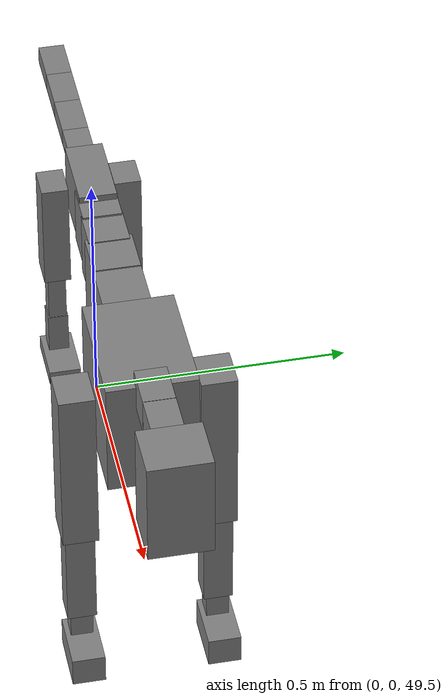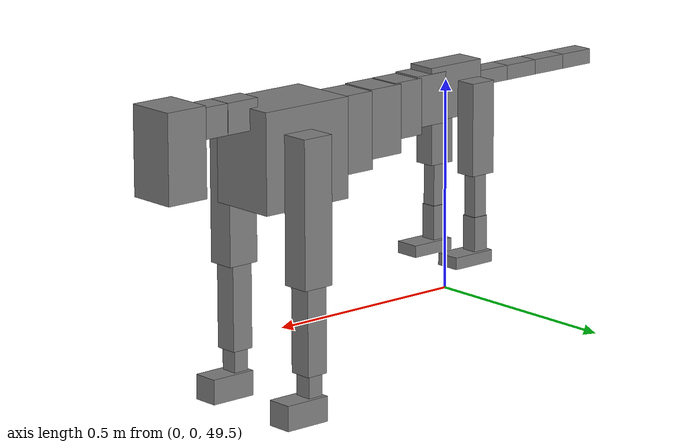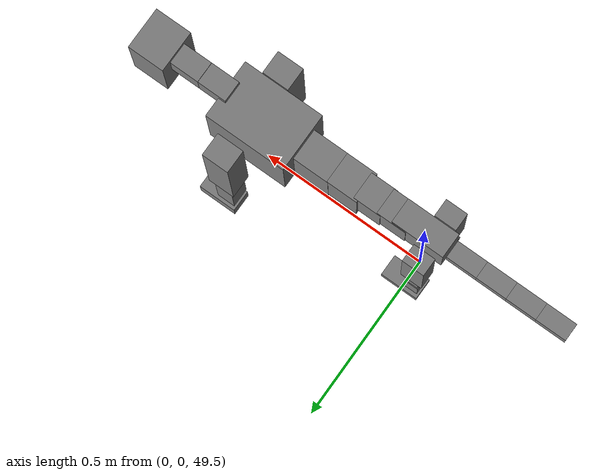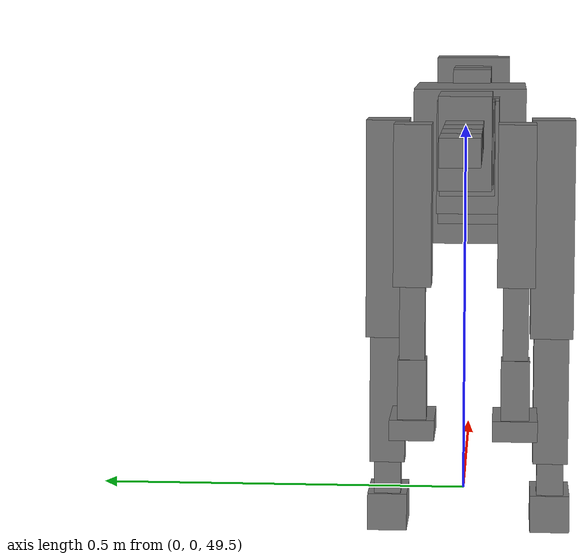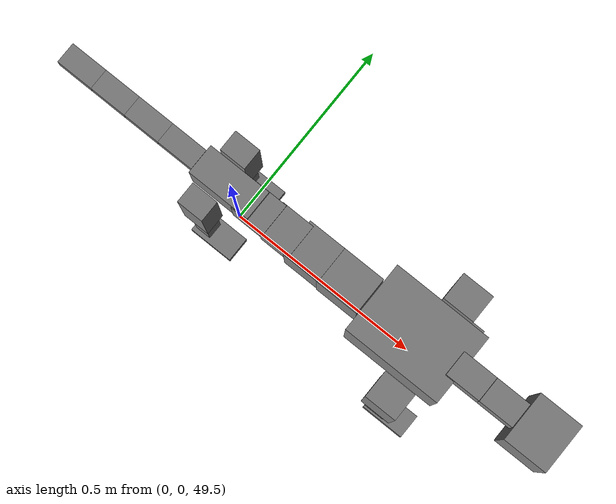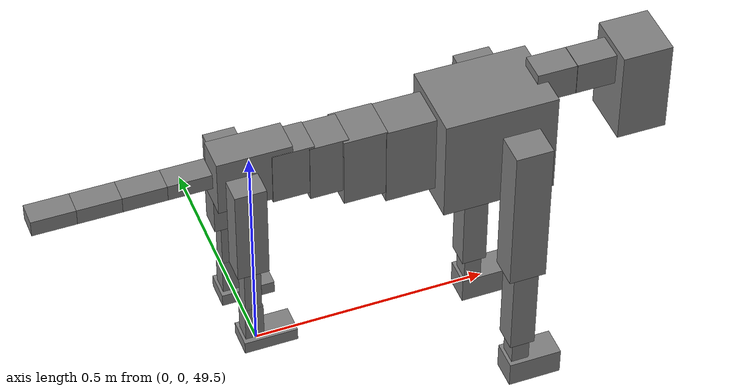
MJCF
<mujoco model="dog">

    <default>
        <joint armature="0.02" stiffness="1" damping="0.2" limited="true"/>
        <geom condim="3" friction="1 0.05 0.05" margin="0.01"/>
        <motor ctrllimited="true" ctrlrange="-1.0 1.0" forcelimited="true" gear="50"/>
    </default>

    <compiler inertiafromgeom="true" angle="radian"/>

    <option timestep="0.016" iterations="50" tolerance="1e-10" solver="Newton" jacobian="dense" cone="pyramidal"/>

    <size nconmax="20000" njmax="60000" nstack="5000000"/>
    <visual>
        <map force="0.1" zfar="30"/>
        <rgba haze="0.15 0.25 0.35 1"/>
        <quality shadowsize="2048"/>
        <global offwidth="800" offheight="800"/>
    </visual>

    <asset>
        <texture type="skybox" builtin="gradient" rgb1="0.3 0.5 0.7" rgb2="0 0 0" width="512" height="512"/>
        <texture name="texplane" type="2d" builtin="checker" rgb1=".2 .3 .4" rgb2=".1 0.15 0.2" width="512" height="512"
                 mark="cross" markrgb=".8 .8 .8"/>
        <texture name="texgeom" type="cube" builtin="flat" mark="cross" width="127" height="1278" rgb1="0.8 0.6 0.4"
                 rgb2="0.8 0.6 0.4" markrgb="1 1 1" random="0.01"/>

        <material name="matplane" reflectance="0.3" texture="texplane" texrepeat="1 1" texuniform="true"/>
        <material name="matgeom" texture="texgeom" texuniform="true" rgba="0.8 0.6 .4 1"/>
    </asset>

    <worldbody>
        <geom name="floor" pos="0 0 0" size="0 0 .25" type="plane" material="matplane" condim="3"/>

        <light directional="false" diffuse=".2 .2 .2" specular="0 0 0" pos="0 0 5" dir="0 0 -1" castshadow="false"/>
        <light mode="targetbodycom" target="torso" directional="false" diffuse=".8 .8 .8" specular="0.3 0.3 0.3"
               pos="0 0 4.0" dir="0 0 -1"/>

        <body name="root" pos="0 0 50">
            <freejoint name="root_1"/>
            <geom type="box" pos="0 0 -0.02" size="0.0774  0.0358  0.063" density="2030"/>

            <body name="spine1" pos="0.054 0 0">
                <joint name="spine1_y" axis="0 1 0" range="0 0.7" limited="true"/>
                <geom type="box" pos="0.02375 0 -0.03" size="0.04375  0.0375  0.05985" density="2030"/>

                <body name="spine2" pos="0.0612 0 0">
                    <joint name="spine2_y" axis="0 1 0" range="-0.15 0.15" limited="true"/>
                    <geom type="box" pos="0.03555  0  -0.04" size="0.04055  0.039  0.06615" density="2030"/>

                    <body name="spine3" pos="0.0730 0 0">
                        <joint name="spine3_y" axis="0 1 0" range="-0.15 0.15" limited="true"/>
                        <geom type="box" pos="0.03555  0  -0.057" size="0.04555  0.0445  0.081" density="2030"/>

                        <body name="spine4" pos="0.0780 0 0">
                            <joint name="spine4_y" axis="0 1 0" range="-0.15 0.15" limited="true"/>
                            <geom type="box" pos="0.05265  0  -0.07" size="0.05265  0.045  0.09135" density="2030"/>

                            <body name="torso" pos="0.1082 0 0">
                                <joint name="torso_y" axis="0 1 0" range="-0.15 0.15" limited="true"/>
                                <geom type="box" pos="0.11925  0  -0.085" size="0.11925  0.085  0.11745"
                                      density="2030"/>

                                <body name="neck1" pos="0.2160  0   0.0180">
                                    <joint name="neck1_y" axis="0 1 0" range="-1.2  -1" limited="true"/>
                                    <geom type="box" pos="0.0423  0  0" size="0.0423  0.03  0.036" density="2325"/>

                                    <body name="neck2" pos="0.0853  0  0">
                                        <joint name="neck2_y" axis="0 1 0" range="0.1  0" limited="true"/>
                                        <geom type="box" pos="0.0423  0  0" size="0.0423  0.03  0.036" density="2325"/>

                                        <body name="head" pos="0.0853  0  0">
                                            <joint name="head_y" axis="0 1 0" range="-0.3  -0.2" limited="true"/>
                                            <geom type="box" pos="0.0531  0  -0.055" size="0.0531  0.06  0.1044"
                                                  density="4030"/>

                                        </body>
                                    </body>
                                </body>

                                <body name="front_shoulder" pos="0.156  0   -0.0480">
                                    <joint name="front_shoulder_y" axis="0 1 0" range="-1 1.5" limited="true"/>
                                    <geom type="box" pos="0 0.13 -0.1458" size="0.0395  0.0338  0.1724" density="1158"/>
                                    <geom type="box" pos="0 -0.13 -0.1458" size="0.0395  0.0338  0.1724"
                                          density="1158"/>

                                    <body name="front_elbow" pos="0  0  -0.2916">
                                        <joint name="front_elbow_y" axis="0 1 0" range="-2 0" limited="true"/>
                                        <geom type="box" pos="0 0.13 -0.1149" size="0.0272  0.0278  0.1149"
                                              density="1081"/>
                                        <geom type="box" pos="0 -0.13 -0.1149" size="0.0272  0.0278  0.1149"
                                              density="1081"/>

                                        <body name="front_wrist" pos="0  0  -0.2297">
                                            <joint name="front_wrist_y" axis="0 1 0" range="-0.2 0" limited="true"/>
                                            <geom type="box" pos="0 0.13 -0.0338" size="0.0192  0.0213  0.0469"
                                                  density="1664"/>
                                            <geom type="box" pos="0 -0.13 -0.0338" size="0.0192  0.0213  0.0469"
                                                  density="1664"/>

                                            <body name="front_finger_end" pos="0  0  -0.0675">
                                                <joint name="front_finger_y" axis="0 1 0" range="-0.4 1"
                                                       limited="true"/>
                                                <geom type="box" pos="0.0314  0.13  -0.0147"
                                                      size="0.0576  0.0314  0.0297" density="1515"/>
                                                <geom type="box" pos="0.0314  -0.13  -0.0147"
                                                      size="0.0576  0.0314  0.0297" density="1515"/>

                                            </body>

                                        </body>
                                    </body>
                                </body>

                            </body>
                        </body>
                    </body>
                </body>
            </body>

            <body name="back_hip" pos="-0.03 0 -0.018">
                <joint name="back_hip_y" axis="0 1 0" range="-1.5 0.3" limited="true"/>
                <geom type="box" pos="0 0.07 -0.0868" size="0.0326  0.0256  0.1096" density="1154"/>
                <geom type="box" pos="0 -0.07 -0.0868" size="0.0326  0.0256  0.1096" density="1154"/>

                <body name="back_knee" pos="0  0  -0.1736">
                    <joint name="back_knee_y" axis="0 1 0" range="0 2.8" limited="true"/>
                    <geom type="box" pos="0 0.07 -0.0675" size="0.0175  0.0173  0.0831" density="1227"/>
                    <geom type="box" pos="0 -0.07 -0.0675" size="0.0175  0.0173  0.0831" density="1227"/>

                    <body name="back_ankle" pos="0  0  -0.1351">
                        <joint name="back_ankle_y" axis="0 1 0" range="-2.2 0" limited="true"/>
                        <geom type="box" pos="0 0.07 -0.0429" size="0.0195  0.0195  0.0541" density="1284"/>
                        <geom type="box" pos="0 -0.07 -0.0429" size="0.0195  0.0195  0.0541" density="1284"/>

                        <body name="back_toe_end" pos="0  0  -0.0858">
                            <joint name="back_toe_y" axis="0 1 0" range="-0.4 1" limited="true"/>
                            <geom type="box" pos="0.0306  0.07  0.0009" size="0.0562  0.0306  0.0141" density="1515"/>
                            <geom type="box" pos="0.0306  -0.07  0.0009" size="0.0562  0.0306  0.0141" density="1515"/>

                        </body>
                    </body>
                </body>
            </body>

            <body name="tail1" pos="-0.074 0 -0.006">
                <joint name="tail1_y" axis="0 1 0" range="-0.2 0.2" limited="true"/>
                <geom type="box" pos="-0.0536  0  0" size="0.045  0.025  0.0175" density="1587"/>

                <body name="tail2" pos="-0.09 0 0">
                    <joint name="tail2_y" axis="0 1 0" range="-0.2 0.2" limited="true"/>
                    <geom type="box" pos="-0.0536  0  0" size="0.045  0.025  0.0175" density="1587"/>

                    <body name="tail3" pos="-0.09 0 0">
                        <joint name="tail3_y" axis="0 1 0" range="-0.2 0.2" limited="true"/>
                        <geom type="box" pos="-0.0536  0  0" size="0.045  0.025  0.0175" density="1587"/>

                        <body name="tail4" pos="-0.09 0 0">
                            <joint name="tail4_y" axis="0 1 0" range="-0.2 0.2" limited="true"/>
                            <geom type="box" pos="-0.0536  0  0" size="0.045  0.025  0.0175" density="1587"/>

                        </body>
                    </body>
                </body>
            </body>
        </body>
    </worldbody>

    <actuator>
        <motor joint="spine1_y" forcerange="-150 150     "/>
        <motor joint="spine2_y" forcerange="-150 150     "/>
        <motor joint="spine3_y" forcerange="-150 150     "/>
        <motor joint="spine4_y" forcerange="-150 150     "/>
        <motor joint="torso_y" forcerange="-150 150     "/>
        <motor joint="neck1_y" forcerange="-100 100       "/>
        <motor joint="neck2_y" forcerange="-100 100       "/>
        <motor joint="head_y" forcerange="-150 150       "/>
        <motor joint="front_shoulder_y" forcerange="-196.09 129.21"/>
        <motor joint="front_elbow_y" forcerange="-134.81 167.15"/>
        <motor joint="front_wrist_y" forcerange="-93.21 77.43"/>
        <motor joint="front_finger_y" forcerange="-96.37 31.11"/>
        <motor joint="back_hip_y" forcerange="-290.66 250.37"/>
        <motor joint="back_knee_y" forcerange="-208.19 243.09"/>
        <motor joint="back_angle_y" forcerange="-105.76 105.89"/>
        <motor joint="back_toe_y" forcerange="-100.98 64.20"/>
        <motor joint="tail1_y" forcerange="-50 50     "/>
        <motor joint="tail2_y" forcerange="-50 50     "/>
        <motor joint="tail3_y" forcerange="-50 50     "/>
        <motor joint="tail4_y" forcerange="-50 50     "/>
    </actuator>
</mujoco>
